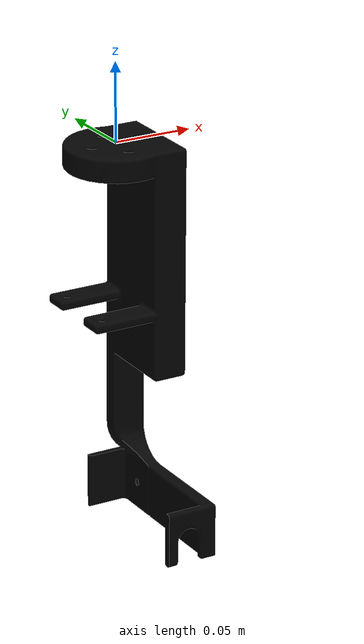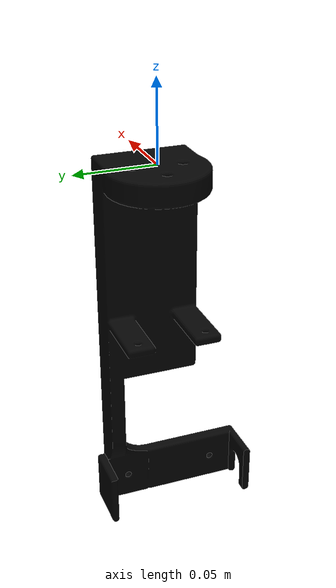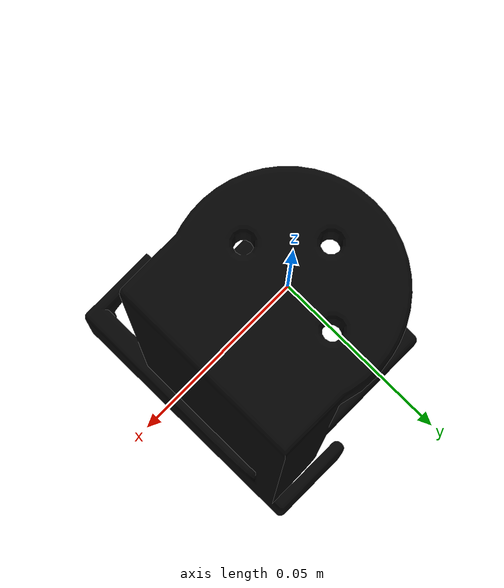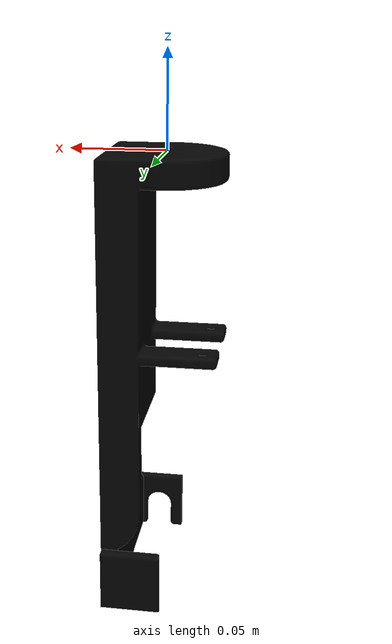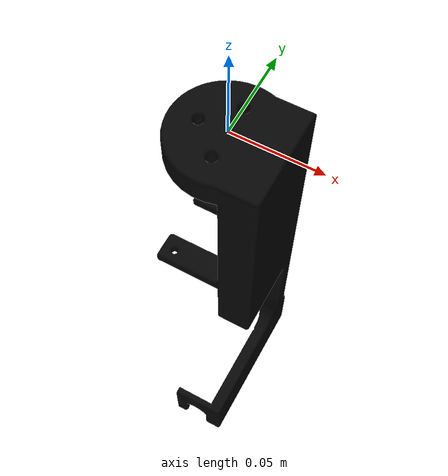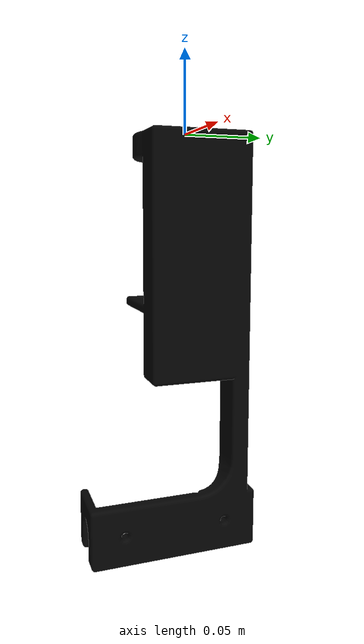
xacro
<?xml version="1.0" encoding="utf-8"?>
<robot
  name="probe_mount2"
  xmlns:xacro="http://www.ros.org/wiki/xacro">
  <link
    name="probe_mount">
    <inertial>
      <origin
        xyz="0.0172095025438958 -0.0934181562801906 0.000471391183381434"
        rpy="0 0 0" />
      <mass
        value="0.275178819498116" />
      <inertia
        ixx="0.00158144645389415"
        ixy="9.09904679448213E-05"
        ixz="-2.74539325678678E-06"
        iyy="0.000168425924534353"
        iyz="3.76040071661897E-05"
        izz="0.00150104046709865" />
    </inertial>
    <visual>
      <origin
        xyz="0 0 0"
        rpy="0 0 0" />
      <geometry>
        <mesh
          filename="package://probe_mount2/meshes/probe_mount.STL" />
      </geometry>
      <material
        name="">
        <color
          rgba="0.0196078431372549 0.0196078431372549 0.0196078431372549 1" />
      </material>
    </visual>
    <collision>
      <origin
        xyz="0 0 0"
        rpy="0 0 0" />
      <geometry>
        <mesh
          filename="package://probe_mount2/meshes/probe_mount.STL" />
      </geometry>
    </collision>
  </link>
</robot>
